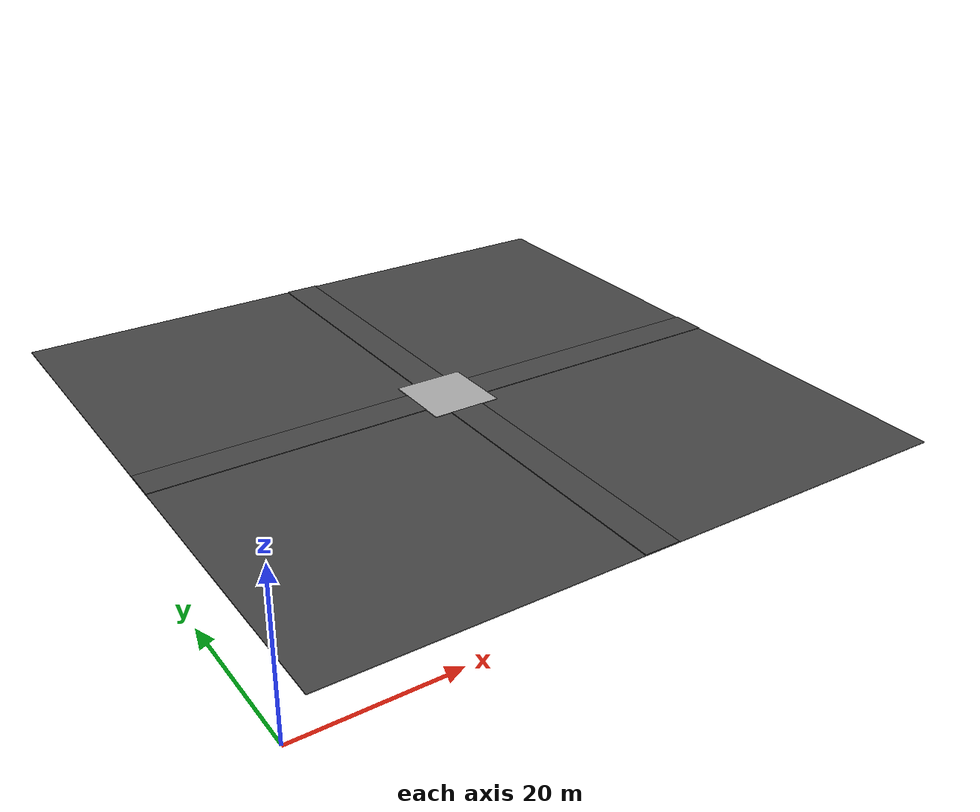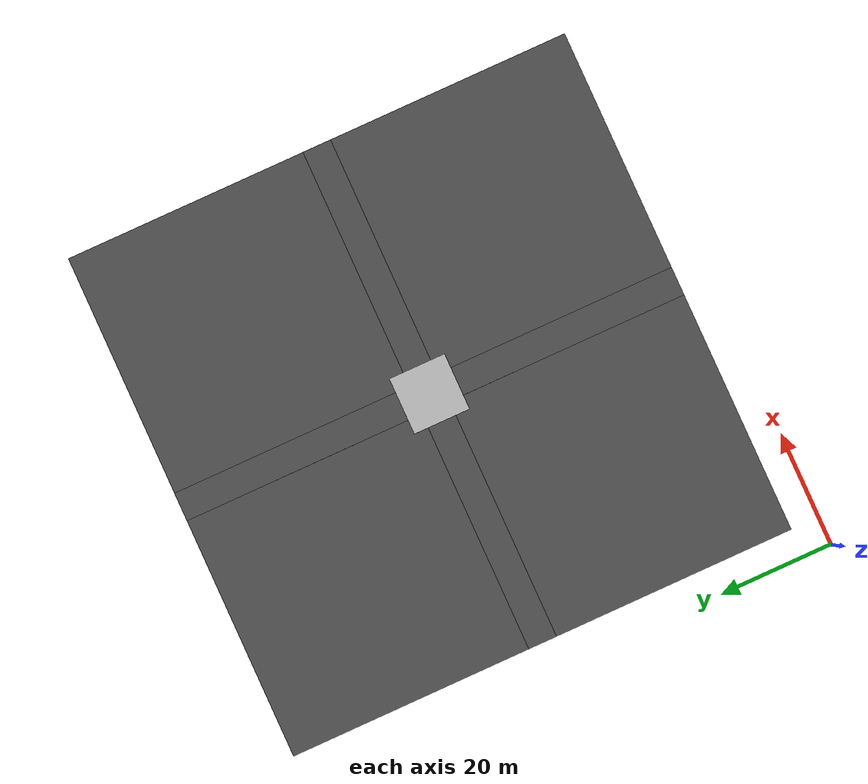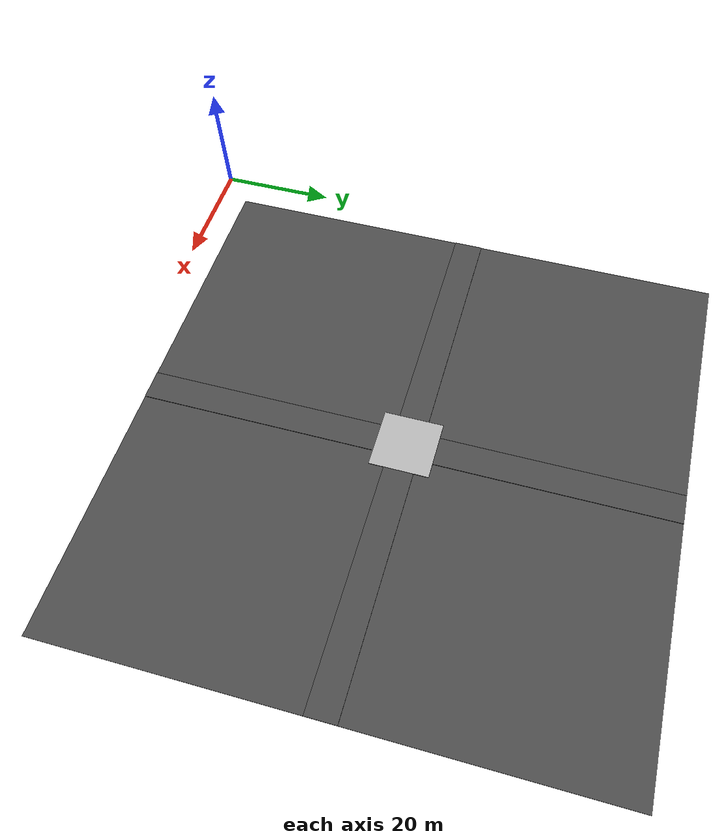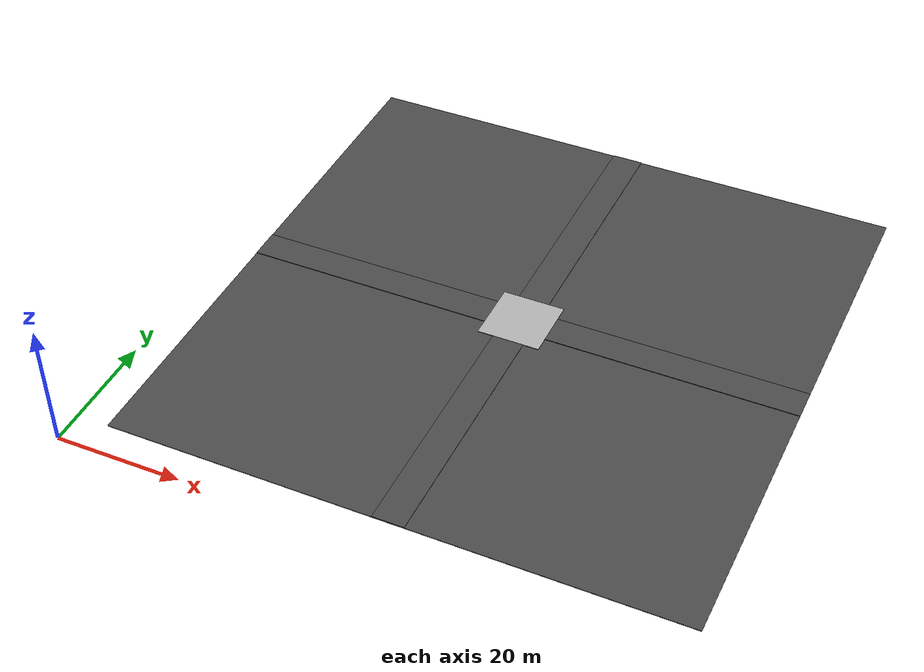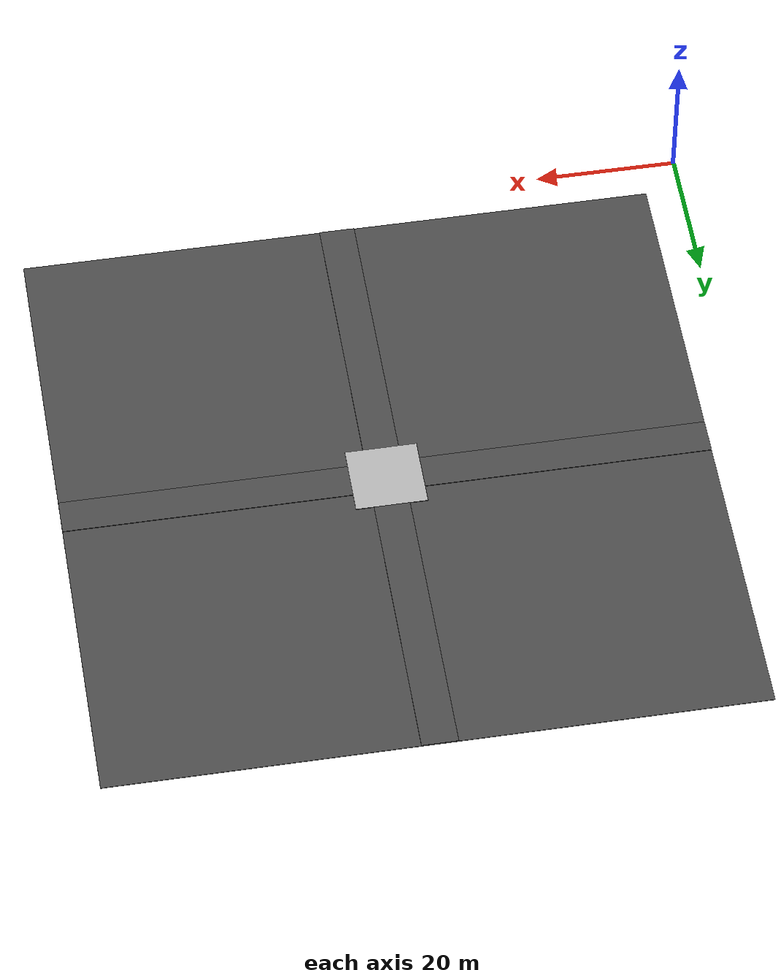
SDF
<sdf version="1.5">
 <world name="default">
  <light name="sun" type="directional">
   <pose>0 0 10 0 -0 0</pose>
   <diffuse>0.8 0.8 0.8 1</diffuse>
   <specular>0.2 0.2 0.2 1</specular>
   <attenuation>
    <range>1000</range>
    <constant>0.9</constant>
    <linear>0.01</linear>
    <quadratic>0.001</quadratic>
   </attenuation>
   <direction>-0.5 0.1 -0.9</direction>
  </light>
  <scene>
   <sky><clouds><speed>5</speed></clouds></sky>
   <ambient>0.4 0.4 0.4 1</ambient>
   <background>0.7 0.7 0.7 1</background>
   <shadows>1</shadows>
  </scene>
  <model name="road_1_1_0">
   <pose>50 25 0 0 -0 1.5707</pose>
   <static>1</static>
   <link name="link">
    <collision name="collision"><geometry><box><size>40 5 0.1</size></box></geometry></collision>
    <visual name="visual">
     <cast_shadows>0</cast_shadows>
     <geometry><box><size>40 5 0.1</size></box></geometry>
     <material>
      <script>
       <uri>models/comps_road/materials/scripts</uri>
       <uri>models/comps_road/materials/textures</uri>
       <name>comps_road</name>
      </script>
     </material>
    </visual>
    <gravity>0</gravity>
   </link>
  </model>
  <model name="road_2_0_1">
   <pose>25 50 0 0 -0 0</pose>
   <static>1</static>
   <link name="link">
    <collision name="collision"><geometry><box><size>40 5 0.1</size></box></geometry></collision>
    <visual name="visual">
     <cast_shadows>0</cast_shadows>
     <geometry><box><size>40 5 0.1</size></box></geometry>
     <material>
      <script>
       <uri>models/comps_road/materials/scripts</uri>
       <uri>models/comps_road/materials/textures</uri>
       <name>comps_road</name>
      </script>
     </material>
    </visual>
   </link>
  </model>
  <model name="road_1_1_1">
   <pose>50 75 0 0 -0 1.5707</pose>
   <static>1</static>
   <link name="link">
    <collision name="collision"><geometry><box><size>40 5 0.1</size></box></geometry></collision>
    <visual name="visual">
     <cast_shadows>0</cast_shadows>
     <geometry><box><size>40 5 0.1</size></box></geometry>
     <material>
      <script>
       <uri>models/comps_road/materials/scripts</uri>
       <uri>models/comps_road/materials/textures</uri>
       <name>comps_road</name>
      </script>
     </material>
    </visual>
   </link>
  </model>
  <model name="road_2_1_1">
   <pose>75 50 0 0 -0 0</pose>
   <static>1</static>
   <link name="link">
    <collision name="collision"><geometry><box><size>40 5 0.1</size></box></geometry></collision>
    <visual name="visual">
     <cast_shadows>0</cast_shadows>
     <geometry><box><size>40 5 0.1</size></box></geometry>
     <material>
      <script>
       <uri>models/comps_road/materials/scripts</uri>
       <uri>models/comps_road/materials/textures</uri>
       <name>comps_road</name>
      </script>
     </material>
    </visual>
   </link>
  </model>
  <model name="intersection_1_1">
   <pose>50 50 0 0 -0 0</pose>
   <static>1</static>
   <link name="link">
    <collision name="collision"><geometry><box><size>10 10 0.1</size></box></geometry></collision>
    <visual name="visual">
     <cast_shadows>0</cast_shadows>
     <geometry><box><size>10 10 0.1</size></box></geometry>
     <material>
      <script>
       <uri>models/intersection/materials/scripts</uri>
       <uri>models/intersection/materials/textures</uri>
       <name>intersection</name>
      </script>
     </material>
    </visual>
   </link>
  </model>
  <physics name="default_physics" default="0" type="ode">
   <max_step_size>0.001</max_step_size>
   <real_time_factor>1</real_time_factor>
   <real_time_update_rate>1000</real_time_update_rate>
   <gravity>0 0 -9.8</gravity>
   <magnetic_field>6e-06 2.3e-05 -4.2e-05</magnetic_field>
  </physics>
  <audio><device>default</device></audio>
  <spherical_coordinates>
   <surface_model>EARTH_WGS84</surface_model>
   <latitude_deg>0</latitude_deg>
   <longitude_deg>0</longitude_deg>
   <elevation>0</elevation>
   <heading_deg>0</heading_deg>
  </spherical_coordinates>
  <model name="asphalt_plane">
   <static>1</static>
   <link name="link">
    <collision name="collision"><geometry><box><size>90 90 0.1</size></box></geometry></collision>
    <visual name="visual">
     <cast_shadows>0</cast_shadows>
     <geometry><box><size>90 90 0.1</size></box></geometry>
     <material>
      <script>
       <uri>model://asphalt_plane/materials/scripts</uri>
       <uri>model://asphalt_plane/materials/textures</uri>
       <name>vrc/asphalt</name>
      </script>
     </material>
    </visual>
   </link>
   <pose>50 50 -0.1 0 -0 0</pose>
  </model>
 </world>
</sdf>
